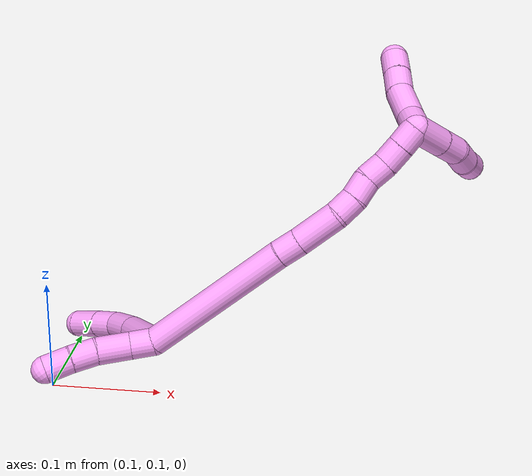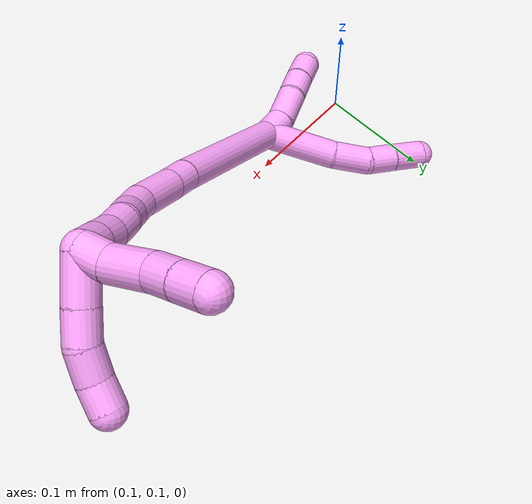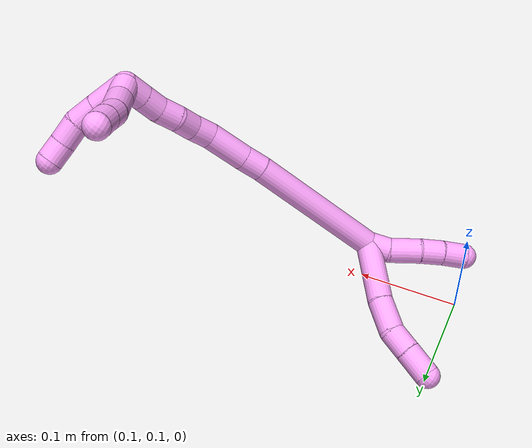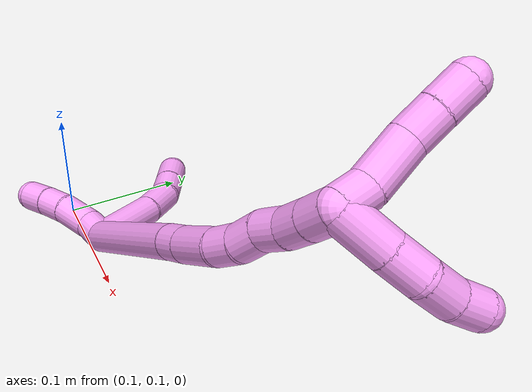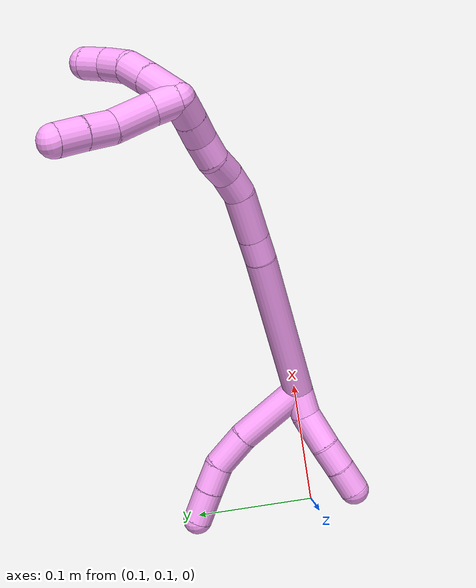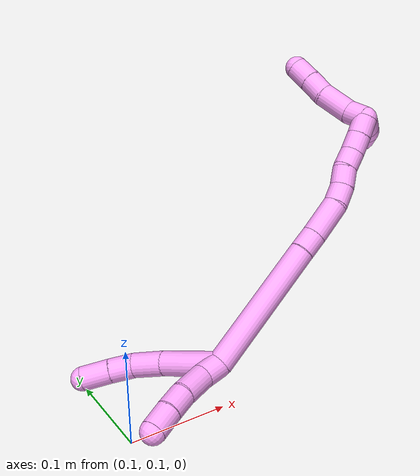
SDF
<sdf version="1.7">
 <world name="default">
  <model name="4">
   <static>0</static>
   <link name="4">
    <collision name="collision-cylinder-e_1_2_8">
     <pose>0.004256 0.027496 -0.013972 -2.04096 0.137119 -0.222911</pose>
     <geometry><cylinder><radius>0.0125</radius><length>0.062269</length></cylinder></geometry>
     <surface>
      <friction><ode><mu>1.16</mu><mu2>1.16</mu2><slip1>0</slip1><slip2>0</slip2></ode></friction>
      <contact><ode><kp>1e+06</kp><kd>1</kd><max_vel>0</max_vel><min_depth>0.001</min_depth></ode></contact>
     </surface>
    </collision>
    <visual name="visual-cylinder-e_1_2_8">
     <pose>0.004256 0.027496 -0.013972 -2.04096 0.137119 -0.222911</pose>
     <geometry><cylinder><radius>0.0125</radius><length>0.062269</length></cylinder></geometry>
     <material><ambient>1 0.65098 0.996078 1</ambient></material>
    </visual>
    <collision name="collision-cylinder-e_2_8_9">
     <pose>0.009249 0.069004 -0.037232 -2.15609 0.043829 -0.081598</pose>
     <geometry><cylinder><radius>0.0125</radius><length>0.033655</length></cylinder></geometry>
     <surface>
      <friction><ode><mu>1.16</mu><mu2>1.16</mu2><slip1>0</slip1><slip2>0</slip2></ode></friction>
      <contact><ode><kp>1e+06</kp><kd>1</kd><max_vel>0</max_vel><min_depth>0.001</min_depth></ode></contact>
     </surface>
    </collision>
    <visual name="visual-cylinder-e_2_8_9">
     <pose>0.009249 0.069004 -0.037232 -2.15609 0.043829 -0.081598</pose>
     <geometry><cylinder><radius>0.0125</radius><length>0.033655</length></cylinder></geometry>
     <material><ambient>1 0.65098 0.996078 1</ambient></material>
    </visual>
    <collision name="collision-cylinder-e_3_9_10">
     <pose>0.008056 0.091112 -0.055572 -2.41197 -0.15758 0.40773</pose>
     <geometry><cylinder><radius>0.0125</radius><length>0.024593</length></cylinder></geometry>
     <surface>
      <friction><ode><mu>1.16</mu><mu2>1.16</mu2><slip1>0</slip1><slip2>0</slip2></ode></friction>
      <contact><ode><kp>1e+06</kp><kd>1</kd><max_vel>0</max_vel><min_depth>0.001</min_depth></ode></contact>
     </surface>
    </collision>
    <visual name="visual-cylinder-e_3_9_10">
     <pose>0.008056 0.091112 -0.055572 -2.41197 -0.15758 0.40773</pose>
     <geometry><cylinder><radius>0.0125</radius><length>0.024593</length></cylinder></geometry>
     <material><ambient>1 0.65098 0.996078 1</ambient></material>
    </visual>
    <collision name="collision-cylinder-e_4_10_6">
     <pose>0.004172 0.108582 -0.075832 -2.44502 -0.132977 0.36275</pose>
     <geometry><cylinder><radius>0.0125</radius><length>0.029484</length></cylinder></geometry>
     <surface>
      <friction><ode><mu>1.16</mu><mu2>1.16</mu2><slip1>0</slip1><slip2>0</slip2></ode></friction>
      <contact><ode><kp>1e+06</kp><kd>1</kd><max_vel>0</max_vel><min_depth>0.001</min_depth></ode></contact>
     </surface>
    </collision>
    <visual name="visual-cylinder-e_4_10_6">
     <pose>0.004172 0.108582 -0.075832 -2.44502 -0.132977 0.36275</pose>
     <geometry><cylinder><radius>0.0125</radius><length>0.029484</length></cylinder></geometry>
     <material><ambient>1 0.65098 0.996078 1</ambient></material>
    </visual>
    <collision name="collision-cylinder-e_1_2_11">
     <pose>-0.004857 0.001018 -0.009723 -3.0373 -0.461107 2.704</pose>
     <geometry><cylinder><radius>0.0125</radius><length>0.021831</length></cylinder></geometry>
     <surface>
      <friction><ode><mu>1.16</mu><mu2>1.16</mu2><slip1>0</slip1><slip2>0</slip2></ode></friction>
      <contact><ode><kp>1e+06</kp><kd>1</kd><max_vel>0</max_vel><min_depth>0.001</min_depth></ode></contact>
     </surface>
    </collision>
    <visual name="visual-cylinder-e_1_2_11">
     <pose>-0.004857 0.001018 -0.009723 -3.0373 -0.461107 2.704</pose>
     <geometry><cylinder><radius>0.0125</radius><length>0.021831</length></cylinder></geometry>
     <material><ambient>1 0.65098 0.996078 1</ambient></material>
    </visual>
    <collision name="collision-cylinder-e_2_11_12">
     <pose>-0.018785 -0.00012 -0.031915 2.97044 -0.621917 -2.61989</pose>
     <geometry><cylinder><radius>0.0125</radius><length>0.031141</length></cylinder></geometry>
     <surface>
      <friction><ode><mu>1.16</mu><mu2>1.16</mu2><slip1>0</slip1><slip2>0</slip2></ode></friction>
      <contact><ode><kp>1e+06</kp><kd>1</kd><max_vel>0</max_vel><min_depth>0.001</min_depth></ode></contact>
     </surface>
    </collision>
    <visual name="visual-cylinder-e_2_11_12">
     <pose>-0.018785 -0.00012 -0.031915 2.97044 -0.621917 -2.61989</pose>
     <geometry><cylinder><radius>0.0125</radius><length>0.031141</length></cylinder></geometry>
     <material><ambient>1 0.65098 0.996078 1</ambient></material>
    </visual>
    <collision name="collision-cylinder-e_3_12_13">
     <pose>-0.033167 -0.004502 -0.054208 2.9187 -0.485225 -2.29224</pose>
     <geometry><cylinder><radius>0.0125</radius><length>0.022771</length></cylinder></geometry>
     <surface>
      <friction><ode><mu>1.16</mu><mu2>1.16</mu2><slip1>0</slip1><slip2>0</slip2></ode></friction>
      <contact><ode><kp>1e+06</kp><kd>1</kd><max_vel>0</max_vel><min_depth>0.001</min_depth></ode></contact>
     </surface>
    </collision>
    <visual name="visual-cylinder-e_3_12_13">
     <pose>-0.033167 -0.004502 -0.054208 2.9187 -0.485225 -2.29224</pose>
     <geometry><cylinder><radius>0.0125</radius><length>0.022771</length></cylinder></geometry>
     <material><ambient>1 0.65098 0.996078 1</ambient></material>
    </visual>
    <collision name="collision-cylinder-e_4_13_5">
     <pose>-0.043171 -0.009024 -0.074975 2.93487 -0.397444 -2.19028</pose>
     <geometry><cylinder><radius>0.0125</radius><length>0.024256</length></cylinder></geometry>
     <surface>
      <friction><ode><mu>1.16</mu><mu2>1.16</mu2><slip1>0</slip1><slip2>0</slip2></ode></friction>
      <contact><ode><kp>1e+06</kp><kd>1</kd><max_vel>0</max_vel><min_depth>0.001</min_depth></ode></contact>
     </surface>
    </collision>
    <visual name="visual-cylinder-e_4_13_5">
     <pose>-0.043171 -0.009024 -0.074975 2.93487 -0.397444 -2.19028</pose>
     <geometry><cylinder><radius>0.0125</radius><length>0.024256</length></cylinder></geometry>
     <material><ambient>1 0.65098 0.996078 1</ambient></material>
    </visual>
    <collision name="collision-cylinder-e_1_2_14">
     <pose>0.000476 -0.000226 0.068831 0.003285 0.006918 1.1e-05</pose>
     <geometry><cylinder><radius>0.0125</radius><length>0.137667</length></cylinder></geometry>
     <surface>
      <friction><ode><mu>1.16</mu><mu2>1.16</mu2><slip1>0</slip1><slip2>0</slip2></ode></friction>
      <contact><ode><kp>1e+06</kp><kd>1</kd><max_vel>0</max_vel><min_depth>0.001</min_depth></ode></contact>
     </surface>
    </collision>
    <visual name="visual-cylinder-e_1_2_14">
     <pose>0.000476 -0.000226 0.068831 0.003285 0.006918 1.1e-05</pose>
     <geometry><cylinder><radius>0.0125</radius><length>0.137667</length></cylinder></geometry>
     <material><ambient>1 0.65098 0.996078 1</ambient></material>
    </visual>
    <collision name="collision-cylinder-e_2_14_15">
     <pose>0.00176 -0.000285 0.148173 -0.015912 0.076677 -0.00061</pose>
     <geometry><cylinder><radius>0.0125</radius><length>0.021084</length></cylinder></geometry>
     <surface>
      <friction><ode><mu>1.16</mu><mu2>1.16</mu2><slip1>0</slip1><slip2>0</slip2></ode></friction>
      <contact><ode><kp>1e+06</kp><kd>1</kd><max_vel>0</max_vel><min_depth>0.001</min_depth></ode></contact>
     </surface>
    </collision>
    <visual name="visual-cylinder-e_2_14_15">
     <pose>0.00176 -0.000285 0.148173 -0.015912 0.076677 -0.00061</pose>
     <geometry><cylinder><radius>0.0125</radius><length>0.021084</length></cylinder></geometry>
     <material><ambient>1 0.65098 0.996078 1</ambient></material>
    </visual>
    <collision name="collision-cylinder-e_3_15_16">
     <pose>0.002984 0.000412 0.178538 -0.026674 0.020984 -0.00028</pose>
     <geometry><cylinder><radius>0.0125</radius><length>0.039734</length></cylinder></geometry>
     <surface>
      <friction><ode><mu>1.16</mu><mu2>1.16</mu2><slip1>0</slip1><slip2>0</slip2></ode></friction>
      <contact><ode><kp>1e+06</kp><kd>1</kd><max_vel>0</max_vel><min_depth>0.001</min_depth></ode></contact>
     </surface>
    </collision>
    <visual name="visual-cylinder-e_3_15_16">
     <pose>0.002984 0.000412 0.178538 -0.026674 0.020984 -0.00028</pose>
     <geometry><cylinder><radius>0.0125</radius><length>0.039734</length></cylinder></geometry>
     <material><ambient>1 0.65098 0.996078 1</ambient></material>
    </visual>
    <collision name="collision-cylinder-e_4_16_17">
     <pose>0.003349 0.003571 0.208257 -0.260466 -0.005105 0.000669</pose>
     <geometry><cylinder><radius>0.0125</radius><length>0.020416</length></cylinder></geometry>
     <surface>
      <friction><ode><mu>1.16</mu><mu2>1.16</mu2><slip1>0</slip1><slip2>0</slip2></ode></friction>
      <contact><ode><kp>1e+06</kp><kd>1</kd><max_vel>0</max_vel><min_depth>0.001</min_depth></ode></contact>
     </surface>
    </collision>
    <visual name="visual-cylinder-e_4_16_17">
     <pose>0.003349 0.003571 0.208257 -0.260466 -0.005105 0.000669</pose>
     <geometry><cylinder><radius>0.0125</radius><length>0.020416</length></cylinder></geometry>
     <material><ambient>1 0.65098 0.996078 1</ambient></material>
    </visual>
    <collision name="collision-cylinder-e_5_17_18">
     <pose>0.001366 0.010147 0.227384 -0.402869 -0.189453 0.038798</pose>
     <geometry><cylinder><radius>0.0125</radius><length>0.020506</length></cylinder></geometry>
     <surface>
      <friction><ode><mu>1.16</mu><mu2>1.16</mu2><slip1>0</slip1><slip2>0</slip2></ode></friction>
      <contact><ode><kp>1e+06</kp><kd>1</kd><max_vel>0</max_vel><min_depth>0.001</min_depth></ode></contact>
     </surface>
    </collision>
    <visual name="visual-cylinder-e_5_17_18">
     <pose>0.001366 0.010147 0.227384 -0.402869 -0.189453 0.038798</pose>
     <geometry><cylinder><radius>0.0125</radius><length>0.020506</length></cylinder></geometry>
     <material><ambient>1 0.65098 0.996078 1</ambient></material>
    </visual>
    <collision name="collision-cylinder-e_6_18_19">
     <pose>-0.00022 0.016256 0.246485 -0.216184 0.034217 -0.003713</pose>
     <geometry><cylinder><radius>0.0125</radius><length>0.020156</length></cylinder></geometry>
     <surface>
      <friction><ode><mu>1.16</mu><mu2>1.16</mu2><slip1>0</slip1><slip2>0</slip2></ode></friction>
      <contact><ode><kp>1e+06</kp><kd>1</kd><max_vel>0</max_vel><min_depth>0.001</min_depth></ode></contact>
     </surface>
    </collision>
    <visual name="visual-cylinder-e_6_18_19">
     <pose>-0.00022 0.016256 0.246485 -0.216184 0.034217 -0.003713</pose>
     <geometry><cylinder><radius>0.0125</radius><length>0.020156</length></cylinder></geometry>
     <material><ambient>1 0.65098 0.996078 1</ambient></material>
    </visual>
    <collision name="collision-cylinder-e_7_19_20">
     <pose>-0.001425 0.020277 0.266127 -0.187552 -0.154019 0.014514</pose>
     <geometry><cylinder><radius>0.0125</radius><length>0.020197</length></cylinder></geometry>
     <surface>
      <friction><ode><mu>1.16</mu><mu2>1.16</mu2><slip1>0</slip1><slip2>0</slip2></ode></friction>
      <contact><ode><kp>1e+06</kp><kd>1</kd><max_vel>0</max_vel><min_depth>0.001</min_depth></ode></contact>
     </surface>
    </collision>
    <visual name="visual-cylinder-e_7_19_20">
     <pose>-0.001425 0.020277 0.266127 -0.187552 -0.154019 0.014514</pose>
     <geometry><cylinder><radius>0.0125</radius><length>0.020197</length></cylinder></geometry>
     <material><ambient>1 0.65098 0.996078 1</ambient></material>
    </visual>
    <collision name="collision-cylinder-e_8_20_1">
     <pose>-0.004775 0.024274 0.285657 -0.216209 -0.17899 0.019477</pose>
     <geometry><cylinder><radius>0.0125</radius><length>0.02024</length></cylinder></geometry>
     <surface>
      <friction><ode><mu>1.16</mu><mu2>1.16</mu2><slip1>0</slip1><slip2>0</slip2></ode></friction>
      <contact><ode><kp>1e+06</kp><kd>1</kd><max_vel>0</max_vel><min_depth>0.001</min_depth></ode></contact>
     </surface>
    </collision>
    <visual name="visual-cylinder-e_8_20_1">
     <pose>-0.004775 0.024274 0.285657 -0.216209 -0.17899 0.019477</pose>
     <geometry><cylinder><radius>0.0125</radius><length>0.02024</length></cylinder></geometry>
     <material><ambient>1 0.65098 0.996078 1</ambient></material>
    </visual>
    <collision name="collision-cylinder-e_1_1_21">
     <pose>0.008988 0.031473 0.299514 -0.88644 1.17337 -0.611374</pose>
     <geometry><cylinder><radius>0.0125</radius><length>0.033761</length></cylinder></geometry>
     <surface>
      <friction><ode><mu>1.16</mu><mu2>1.16</mu2><slip1>0</slip1><slip2>0</slip2></ode></friction>
      <contact><ode><kp>1e+06</kp><kd>1</kd><max_vel>0</max_vel><min_depth>0.001</min_depth></ode></contact>
     </surface>
    </collision>
    <visual name="visual-cylinder-e_1_1_21">
     <pose>0.008988 0.031473 0.299514 -0.88644 1.17337 -0.611374</pose>
     <geometry><cylinder><radius>0.0125</radius><length>0.033761</length></cylinder></geometry>
     <material><ambient>1 0.65098 0.996078 1</ambient></material>
    </visual>
    <collision name="collision-cylinder-e_2_21_22">
     <pose>0.035135 0.040428 0.3064 -0.954783 1.14738 -0.64519</pose>
     <geometry><cylinder><radius>0.0125</radius><length>0.023215</length></cylinder></geometry>
     <surface>
      <friction><ode><mu>1.16</mu><mu2>1.16</mu2><slip1>0</slip1><slip2>0</slip2></ode></friction>
      <contact><ode><kp>1e+06</kp><kd>1</kd><max_vel>0</max_vel><min_depth>0.001</min_depth></ode></contact>
     </surface>
    </collision>
    <visual name="visual-cylinder-e_2_21_22">
     <pose>0.035135 0.040428 0.3064 -0.954783 1.14738 -0.64519</pose>
     <geometry><cylinder><radius>0.0125</radius><length>0.023215</length></cylinder></geometry>
     <material><ambient>1 0.65098 0.996078 1</ambient></material>
    </visual>
    <collision name="collision-cylinder-e_3_22_23">
     <pose>0.055787 0.049653 0.308866 -1.62503 1.08316 -1.13169</pose>
     <geometry><cylinder><radius>0.0125</radius><length>0.022795</length></cylinder></geometry>
     <surface>
      <friction><ode><mu>1.16</mu><mu2>1.16</mu2><slip1>0</slip1><slip2>0</slip2></ode></friction>
      <contact><ode><kp>1e+06</kp><kd>1</kd><max_vel>0</max_vel><min_depth>0.001</min_depth></ode></contact>
     </surface>
    </collision>
    <visual name="visual-cylinder-e_3_22_23">
     <pose>0.055787 0.049653 0.308866 -1.62503 1.08316 -1.13169</pose>
     <geometry><cylinder><radius>0.0125</radius><length>0.022795</length></cylinder></geometry>
     <material><ambient>1 0.65098 0.996078 1</ambient></material>
    </visual>
    <collision name="collision-cylinder-e_4_23_4">
     <pose>0.073652 0.061417 0.308967 -1.51015 0.880082 -0.834215</pose>
     <geometry><cylinder><radius>0.0125</radius><length>0.020228</length></cylinder></geometry>
     <surface>
      <friction><ode><mu>1.16</mu><mu2>1.16</mu2><slip1>0</slip1><slip2>0</slip2></ode></friction>
      <contact><ode><kp>1e+06</kp><kd>1</kd><max_vel>0</max_vel><min_depth>0.001</min_depth></ode></contact>
     </surface>
    </collision>
    <visual name="visual-cylinder-e_4_23_4">
     <pose>0.073652 0.061417 0.308967 -1.51015 0.880082 -0.834215</pose>
     <geometry><cylinder><radius>0.0125</radius><length>0.020228</length></cylinder></geometry>
     <material><ambient>1 0.65098 0.996078 1</ambient></material>
    </visual>
    <collision name="collision-cylinder-e_1_1_24">
     <pose>-0.006145 0.036802 0.295492 -1.56035 0.041583 -0.041151</pose>
     <geometry><cylinder><radius>0.0125</radius><length>0.020802</length></cylinder></geometry>
     <surface>
      <friction><ode><mu>1.16</mu><mu2>1.16</mu2><slip1>0</slip1><slip2>0</slip2></ode></friction>
      <contact><ode><kp>1e+06</kp><kd>1</kd><max_vel>0</max_vel><min_depth>0.001</min_depth></ode></contact>
     </surface>
    </collision>
    <visual name="visual-cylinder-e_1_1_24">
     <pose>-0.006145 0.036802 0.295492 -1.56035 0.041583 -0.041151</pose>
     <geometry><cylinder><radius>0.0125</radius><length>0.020802</length></cylinder></geometry>
     <material><ambient>1 0.65098 0.996078 1</ambient></material>
    </visual>
    <collision name="collision-cylinder-e_2_24_25">
     <pose>-0.010256 0.063654 0.297232 -1.47202 -0.268062 0.243069</pose>
     <geometry><cylinder><radius>0.0125</radius><length>0.034307</length></cylinder></geometry>
     <surface>
      <friction><ode><mu>1.16</mu><mu2>1.16</mu2><slip1>0</slip1><slip2>0</slip2></ode></friction>
      <contact><ode><kp>1e+06</kp><kd>1</kd><max_vel>0</max_vel><min_depth>0.001</min_depth></ode></contact>
     </surface>
    </collision>
    <visual name="visual-cylinder-e_2_24_25">
     <pose>-0.010256 0.063654 0.297232 -1.47202 -0.268062 0.243069</pose>
     <geometry><cylinder><radius>0.0125</radius><length>0.034307</length></cylinder></geometry>
     <material><ambient>1 0.65098 0.996078 1</ambient></material>
    </visual>
    <collision name="collision-cylinder-e_3_25_26">
     <pose>-0.017569 0.090404 0.302142 -1.26232 -0.251055 0.183944</pose>
     <geometry><cylinder><radius>0.0125</radius><length>0.022299</length></cylinder></geometry>
     <surface>
      <friction><ode><mu>1.16</mu><mu2>1.16</mu2><slip1>0</slip1><slip2>0</slip2></ode></friction>
      <contact><ode><kp>1e+06</kp><kd>1</kd><max_vel>0</max_vel><min_depth>0.001</min_depth></ode></contact>
     </surface>
    </collision>
    <visual name="visual-cylinder-e_3_25_26">
     <pose>-0.017569 0.090404 0.302142 -1.26232 -0.251055 0.183944</pose>
     <geometry><cylinder><radius>0.0125</radius><length>0.022299</length></cylinder></geometry>
     <material><ambient>1 0.65098 0.996078 1</ambient></material>
    </visual>
    <collision name="collision-cylinder-e_4_26_3">
     <pose>-0.022935 0.111286 0.308367 -1.29955 -0.23189 0.176535</pose>
     <geometry><cylinder><radius>0.0125</radius><length>0.022591</length></cylinder></geometry>
     <surface>
      <friction><ode><mu>1.16</mu><mu2>1.16</mu2><slip1>0</slip1><slip2>0</slip2></ode></friction>
      <contact><ode><kp>1e+06</kp><kd>1</kd><max_vel>0</max_vel><min_depth>0.001</min_depth></ode></contact>
     </surface>
    </collision>
    <visual name="visual-cylinder-e_4_26_3">
     <pose>-0.022935 0.111286 0.308367 -1.29955 -0.23189 0.176535</pose>
     <geometry><cylinder><radius>0.0125</radius><length>0.022591</length></cylinder></geometry>
     <material><ambient>1 0.65098 0.996078 1</ambient></material>
    </visual>
    <collision name="collision-sphere-3">
     <pose>-0.025531 0.121877 0.311312 0 -0 0</pose>
     <geometry><sphere><radius>0.0125</radius></sphere></geometry>
     <surface>
      <friction><ode><mu>1.16</mu><mu2>1.16</mu2><slip1>0</slip1><slip2>0</slip2></ode></friction>
      <contact><ode><kp>1e+06</kp><kd>1</kd><max_vel>0</max_vel><min_depth>0.001</min_depth></ode></contact>
     </surface>
    </collision>
    <visual name="visual-sphere-3">
     <pose>-0.025531 0.121877 0.311312 0 -0 0</pose>
     <geometry><sphere><radius>0.0125</radius></sphere></geometry>
     <material><ambient>1 0.65098 0.996078 1</ambient></material>
    </visual>
    <collision name="collision-sphere-26">
     <pose>-0.020339 0.100695 0.305421 0 -0 0</pose>
     <geometry><sphere><radius>0.0125</radius></sphere></geometry>
     <surface>
      <friction><ode><mu>1.16</mu><mu2>1.16</mu2><slip1>0</slip1><slip2>0</slip2></ode></friction>
      <contact><ode><kp>1e+06</kp><kd>1</kd><max_vel>0</max_vel><min_depth>0.001</min_depth></ode></contact>
     </surface>
    </collision>
    <visual name="visual-sphere-26">
     <pose>-0.020339 0.100695 0.305421 0 -0 0</pose>
     <geometry><sphere><radius>0.0125</radius></sphere></geometry>
     <material><ambient>1 0.65098 0.996078 1</ambient></material>
    </visual>
    <collision name="collision-sphere-25">
     <pose>-0.014799 0.080114 0.298863 0 -0 0</pose>
     <geometry><sphere><radius>0.0125</radius></sphere></geometry>
     <surface>
      <friction><ode><mu>1.16</mu><mu2>1.16</mu2><slip1>0</slip1><slip2>0</slip2></ode></friction>
      <contact><ode><kp>1e+06</kp><kd>1</kd><max_vel>0</max_vel><min_depth>0.001</min_depth></ode></contact>
     </surface>
    </collision>
    <visual name="visual-sphere-25">
     <pose>-0.014799 0.080114 0.298863 0 -0 0</pose>
     <geometry><sphere><radius>0.0125</radius></sphere></geometry>
     <material><ambient>1 0.65098 0.996078 1</ambient></material>
    </visual>
    <collision name="collision-sphere-24">
     <pose>-0.005712 0.047193 0.295601 0 -0 0</pose>
     <geometry><sphere><radius>0.0125</radius></sphere></geometry>
     <surface>
      <friction><ode><mu>1.16</mu><mu2>1.16</mu2><slip1>0</slip1><slip2>0</slip2></ode></friction>
      <contact><ode><kp>1e+06</kp><kd>1</kd><max_vel>0</max_vel><min_depth>0.001</min_depth></ode></contact>
     </surface>
    </collision>
    <visual name="visual-sphere-24">
     <pose>-0.005712 0.047193 0.295601 0 -0 0</pose>
     <geometry><sphere><radius>0.0125</radius></sphere></geometry>
     <material><ambient>1 0.65098 0.996078 1</ambient></material>
    </visual>
    <collision name="collision-sphere-4">
     <pose>0.081448 0.067849 0.309358 0 -0 0</pose>
     <geometry><sphere><radius>0.0125</radius></sphere></geometry>
     <surface>
      <friction><ode><mu>1.16</mu><mu2>1.16</mu2><slip1>0</slip1><slip2>0</slip2></ode></friction>
      <contact><ode><kp>1e+06</kp><kd>1</kd><max_vel>0</max_vel><min_depth>0.001</min_depth></ode></contact>
     </surface>
    </collision>
    <visual name="visual-sphere-4">
     <pose>0.081448 0.067849 0.309358 0 -0 0</pose>
     <geometry><sphere><radius>0.0125</radius></sphere></geometry>
     <material><ambient>1 0.65098 0.996078 1</ambient></material>
    </visual>
    <collision name="collision-sphere-23">
     <pose>0.065856 0.054985 0.308576 0 -0 0</pose>
     <geometry><sphere><radius>0.0125</radius></sphere></geometry>
     <surface>
      <friction><ode><mu>1.16</mu><mu2>1.16</mu2><slip1>0</slip1><slip2>0</slip2></ode></friction>
      <contact><ode><kp>1e+06</kp><kd>1</kd><max_vel>0</max_vel><min_depth>0.001</min_depth></ode></contact>
     </surface>
    </collision>
    <visual name="visual-sphere-23">
     <pose>0.065856 0.054985 0.308576 0 -0 0</pose>
     <geometry><sphere><radius>0.0125</radius></sphere></geometry>
     <material><ambient>1 0.65098 0.996078 1</ambient></material>
    </visual>
    <collision name="collision-sphere-22">
     <pose>0.045718 0.04432 0.309155 0 -0 0</pose>
     <geometry><sphere><radius>0.0125</radius></sphere></geometry>
     <surface>
      <friction><ode><mu>1.16</mu><mu2>1.16</mu2><slip1>0</slip1><slip2>0</slip2></ode></friction>
      <contact><ode><kp>1e+06</kp><kd>1</kd><max_vel>0</max_vel><min_depth>0.001</min_depth></ode></contact>
     </surface>
    </collision>
    <visual name="visual-sphere-22">
     <pose>0.045718 0.04432 0.309155 0 -0 0</pose>
     <geometry><sphere><radius>0.0125</radius></sphere></geometry>
     <material><ambient>1 0.65098 0.996078 1</ambient></material>
    </visual>
    <collision name="collision-sphere-21">
     <pose>0.024552 0.036535 0.303644 0 -0 0</pose>
     <geometry><sphere><radius>0.0125</radius></sphere></geometry>
     <surface>
      <friction><ode><mu>1.16</mu><mu2>1.16</mu2><slip1>0</slip1><slip2>0</slip2></ode></friction>
      <contact><ode><kp>1e+06</kp><kd>1</kd><max_vel>0</max_vel><min_depth>0.001</min_depth></ode></contact>
     </surface>
    </collision>
    <visual name="visual-sphere-21">
     <pose>0.024552 0.036535 0.303644 0 -0 0</pose>
     <geometry><sphere><radius>0.0125</radius></sphere></geometry>
     <material><ambient>1 0.65098 0.996078 1</ambient></material>
    </visual>
    <collision name="collision-sphere-1">
     <pose>-0.006577 0.02641 0.295383 0 -0 0</pose>
     <geometry><sphere><radius>0.0125</radius></sphere></geometry>
     <surface>
      <friction><ode><mu>1.16</mu><mu2>1.16</mu2><slip1>0</slip1><slip2>0</slip2></ode></friction>
      <contact><ode><kp>1e+06</kp><kd>1</kd><max_vel>0</max_vel><min_depth>0.001</min_depth></ode></contact>
     </surface>
    </collision>
    <visual name="visual-sphere-1">
     <pose>-0.006577 0.02641 0.295383 0 -0 0</pose>
     <geometry><sphere><radius>0.0125</radius></sphere></geometry>
     <material><ambient>1 0.65098 0.996078 1</ambient></material>
    </visual>
    <collision name="collision-sphere-11">
     <pose>-0.009714 0.002035 -0.019445 0 -0 0</pose>
     <geometry><sphere><radius>0.0125</radius></sphere></geometry>
     <surface>
      <friction><ode><mu>1.16</mu><mu2>1.16</mu2><slip1>0</slip1><slip2>0</slip2></ode></friction>
      <contact><ode><kp>1e+06</kp><kd>1</kd><max_vel>0</max_vel><min_depth>0.001</min_depth></ode></contact>
     </surface>
    </collision>
    <visual name="visual-sphere-11">
     <pose>-0.009714 0.002035 -0.019445 0 -0 0</pose>
     <geometry><sphere><radius>0.0125</radius></sphere></geometry>
     <material><ambient>1 0.65098 0.996078 1</ambient></material>
    </visual>
    <collision name="collision-sphere-6">
     <pose>0.002218 0.117957 -0.08704 0 -0 0</pose>
     <geometry><sphere><radius>0.0125</radius></sphere></geometry>
     <surface>
      <friction><ode><mu>1.16</mu><mu2>1.16</mu2><slip1>0</slip1><slip2>0</slip2></ode></friction>
      <contact><ode><kp>1e+06</kp><kd>1</kd><max_vel>0</max_vel><min_depth>0.001</min_depth></ode></contact>
     </surface>
    </collision>
    <visual name="visual-sphere-6">
     <pose>0.002218 0.117957 -0.08704 0 -0 0</pose>
     <geometry><sphere><radius>0.0125</radius></sphere></geometry>
     <material><ambient>1 0.65098 0.996078 1</ambient></material>
    </visual>
    <collision name="collision-sphere-10">
     <pose>0.006127 0.099207 -0.064624 0 -0 0</pose>
     <geometry><sphere><radius>0.0125</radius></sphere></geometry>
     <surface>
      <friction><ode><mu>1.16</mu><mu2>1.16</mu2><slip1>0</slip1><slip2>0</slip2></ode></friction>
      <contact><ode><kp>1e+06</kp><kd>1</kd><max_vel>0</max_vel><min_depth>0.001</min_depth></ode></contact>
     </surface>
    </collision>
    <visual name="visual-sphere-10">
     <pose>0.006127 0.099207 -0.064624 0 -0 0</pose>
     <geometry><sphere><radius>0.0125</radius></sphere></geometry>
     <material><ambient>1 0.65098 0.996078 1</ambient></material>
    </visual>
    <collision name="collision-sphere-9">
     <pose>0.009986 0.083017 -0.046519 0 -0 0</pose>
     <geometry><sphere><radius>0.0125</radius></sphere></geometry>
     <surface>
      <friction><ode><mu>1.16</mu><mu2>1.16</mu2><slip1>0</slip1><slip2>0</slip2></ode></friction>
      <contact><ode><kp>1e+06</kp><kd>1</kd><max_vel>0</max_vel><min_depth>0.001</min_depth></ode></contact>
     </surface>
    </collision>
    <visual name="visual-sphere-9">
     <pose>0.009986 0.083017 -0.046519 0 -0 0</pose>
     <geometry><sphere><radius>0.0125</radius></sphere></geometry>
     <material><ambient>1 0.65098 0.996078 1</ambient></material>
    </visual>
    <collision name="collision-sphere-2">
     <geometry><sphere><radius>0.0125</radius></sphere></geometry>
     <surface>
      <friction><ode><mu>1.16</mu><mu2>1.16</mu2><slip1>0</slip1><slip2>0</slip2></ode></friction>
      <contact><ode><kp>1e+06</kp><kd>1</kd><max_vel>0</max_vel><min_depth>0.001</min_depth></ode></contact>
     </surface>
    </collision>
    <visual name="visual-sphere-2">
     <geometry><sphere><radius>0.0125</radius></sphere></geometry>
     <material><ambient>1 0.65098 0.996078 1</ambient></material>
    </visual>
    <collision name="collision-sphere-19">
     <pose>0.000125 0.018416 0.256323 0 -0 0</pose>
     <geometry><sphere><radius>0.0125</radius></sphere></geometry>
     <surface>
      <friction><ode><mu>1.16</mu><mu2>1.16</mu2><slip1>0</slip1><slip2>0</slip2></ode></friction>
      <contact><ode><kp>1e+06</kp><kd>1</kd><max_vel>0</max_vel><min_depth>0.001</min_depth></ode></contact>
     </surface>
    </collision>
    <visual name="visual-sphere-19">
     <pose>0.000125 0.018416 0.256323 0 -0 0</pose>
     <geometry><sphere><radius>0.0125</radius></sphere></geometry>
     <material><ambient>1 0.65098 0.996078 1</ambient></material>
    </visual>
    <collision name="collision-sphere-8">
     <pose>0.008511 0.054991 -0.027945 0 -0 0</pose>
     <geometry><sphere><radius>0.0125</radius></sphere></geometry>
     <surface>
      <friction><ode><mu>1.16</mu><mu2>1.16</mu2><slip1>0</slip1><slip2>0</slip2></ode></friction>
      <contact><ode><kp>1e+06</kp><kd>1</kd><max_vel>0</max_vel><min_depth>0.001</min_depth></ode></contact>
     </surface>
    </collision>
    <visual name="visual-sphere-8">
     <pose>0.008511 0.054991 -0.027945 0 -0 0</pose>
     <geometry><sphere><radius>0.0125</radius></sphere></geometry>
     <material><ambient>1 0.65098 0.996078 1</ambient></material>
    </visual>
    <collision name="collision-sphere-12">
     <pose>-0.027856 -0.002276 -0.044386 0 -0 0</pose>
     <geometry><sphere><radius>0.0125</radius></sphere></geometry>
     <surface>
      <friction><ode><mu>1.16</mu><mu2>1.16</mu2><slip1>0</slip1><slip2>0</slip2></ode></friction>
      <contact><ode><kp>1e+06</kp><kd>1</kd><max_vel>0</max_vel><min_depth>0.001</min_depth></ode></contact>
     </surface>
    </collision>
    <visual name="visual-sphere-12">
     <pose>-0.027856 -0.002276 -0.044386 0 -0 0</pose>
     <geometry><sphere><radius>0.0125</radius></sphere></geometry>
     <material><ambient>1 0.65098 0.996078 1</ambient></material>
    </visual>
    <collision name="collision-sphere-13">
     <pose>-0.038477 -0.006728 -0.06403 0 -0 0</pose>
     <geometry><sphere><radius>0.0125</radius></sphere></geometry>
     <surface>
      <friction><ode><mu>1.16</mu><mu2>1.16</mu2><slip1>0</slip1><slip2>0</slip2></ode></friction>
      <contact><ode><kp>1e+06</kp><kd>1</kd><max_vel>0</max_vel><min_depth>0.001</min_depth></ode></contact>
     </surface>
    </collision>
    <visual name="visual-sphere-13">
     <pose>-0.038477 -0.006728 -0.06403 0 -0 0</pose>
     <geometry><sphere><radius>0.0125</radius></sphere></geometry>
     <material><ambient>1 0.65098 0.996078 1</ambient></material>
    </visual>
    <collision name="collision-sphere-5">
     <pose>-0.047866 -0.011319 -0.085919 0 -0 0</pose>
     <geometry><sphere><radius>0.0125</radius></sphere></geometry>
     <surface>
      <friction><ode><mu>1.16</mu><mu2>1.16</mu2><slip1>0</slip1><slip2>0</slip2></ode></friction>
      <contact><ode><kp>1e+06</kp><kd>1</kd><max_vel>0</max_vel><min_depth>0.001</min_depth></ode></contact>
     </surface>
    </collision>
    <visual name="visual-sphere-5">
     <pose>-0.047866 -0.011319 -0.085919 0 -0 0</pose>
     <geometry><sphere><radius>0.0125</radius></sphere></geometry>
     <material><ambient>1 0.65098 0.996078 1</ambient></material>
    </visual>
    <collision name="collision-sphere-14">
     <pose>0.000952 -0.000452 0.137663 0 -0 0</pose>
     <geometry><sphere><radius>0.0125</radius></sphere></geometry>
     <surface>
      <friction><ode><mu>1.16</mu><mu2>1.16</mu2><slip1>0</slip1><slip2>0</slip2></ode></friction>
      <contact><ode><kp>1e+06</kp><kd>1</kd><max_vel>0</max_vel><min_depth>0.001</min_depth></ode></contact>
     </surface>
    </collision>
    <visual name="visual-sphere-14">
     <pose>0.000952 -0.000452 0.137663 0 -0 0</pose>
     <geometry><sphere><radius>0.0125</radius></sphere></geometry>
     <material><ambient>1 0.65098 0.996078 1</ambient></material>
    </visual>
    <collision name="collision-sphere-15">
     <pose>0.002567 -0.000118 0.158683 0 -0 0</pose>
     <geometry><sphere><radius>0.0125</radius></sphere></geometry>
     <surface>
      <friction><ode><mu>1.16</mu><mu2>1.16</mu2><slip1>0</slip1><slip2>0</slip2></ode></friction>
      <contact><ode><kp>1e+06</kp><kd>1</kd><max_vel>0</max_vel><min_depth>0.001</min_depth></ode></contact>
     </surface>
    </collision>
    <visual name="visual-sphere-15">
     <pose>0.002567 -0.000118 0.158683 0 -0 0</pose>
     <geometry><sphere><radius>0.0125</radius></sphere></geometry>
     <material><ambient>1 0.65098 0.996078 1</ambient></material>
    </visual>
    <collision name="collision-sphere-16">
     <pose>0.003401 0.000942 0.198393 0 -0 0</pose>
     <geometry><sphere><radius>0.0125</radius></sphere></geometry>
     <surface>
      <friction><ode><mu>1.16</mu><mu2>1.16</mu2><slip1>0</slip1><slip2>0</slip2></ode></friction>
      <contact><ode><kp>1e+06</kp><kd>1</kd><max_vel>0</max_vel><min_depth>0.001</min_depth></ode></contact>
     </surface>
    </collision>
    <visual name="visual-sphere-16">
     <pose>0.003401 0.000942 0.198393 0 -0 0</pose>
     <geometry><sphere><radius>0.0125</radius></sphere></geometry>
     <material><ambient>1 0.65098 0.996078 1</ambient></material>
    </visual>
    <collision name="collision-sphere-17">
     <pose>0.003297 0.0062 0.218121 0 -0 0</pose>
     <geometry><sphere><radius>0.0125</radius></sphere></geometry>
     <surface>
      <friction><ode><mu>1.16</mu><mu2>1.16</mu2><slip1>0</slip1><slip2>0</slip2></ode></friction>
      <contact><ode><kp>1e+06</kp><kd>1</kd><max_vel>0</max_vel><min_depth>0.001</min_depth></ode></contact>
     </surface>
    </collision>
    <visual name="visual-sphere-17">
     <pose>0.003297 0.0062 0.218121 0 -0 0</pose>
     <geometry><sphere><radius>0.0125</radius></sphere></geometry>
     <material><ambient>1 0.65098 0.996078 1</ambient></material>
    </visual>
    <collision name="collision-sphere-18">
     <pose>-0.000565 0.014095 0.236648 0 -0 0</pose>
     <geometry><sphere><radius>0.0125</radius></sphere></geometry>
     <surface>
      <friction><ode><mu>1.16</mu><mu2>1.16</mu2><slip1>0</slip1><slip2>0</slip2></ode></friction>
      <contact><ode><kp>1e+06</kp><kd>1</kd><max_vel>0</max_vel><min_depth>0.001</min_depth></ode></contact>
     </surface>
    </collision>
    <visual name="visual-sphere-18">
     <pose>-0.000565 0.014095 0.236648 0 -0 0</pose>
     <geometry><sphere><radius>0.0125</radius></sphere></geometry>
     <material><ambient>1 0.65098 0.996078 1</ambient></material>
    </visual>
    <collision name="collision-sphere-20">
     <pose>-0.002974 0.022138 0.275931 0 -0 0</pose>
     <geometry><sphere><radius>0.0125</radius></sphere></geometry>
     <surface>
      <friction><ode><mu>1.16</mu><mu2>1.16</mu2><slip1>0</slip1><slip2>0</slip2></ode></friction>
      <contact><ode><kp>1e+06</kp><kd>1</kd><max_vel>0</max_vel><min_depth>0.001</min_depth></ode></contact>
     </surface>
    </collision>
    <visual name="visual-sphere-20">
     <pose>-0.002974 0.022138 0.275931 0 -0 0</pose>
     <geometry><sphere><radius>0.0125</radius></sphere></geometry>
     <material><ambient>1 0.65098 0.996078 1</ambient></material>
    </visual>
    <inertial>
     <pose>0.001444 0.030023 0.127083 0 -0 0</pose>
     <mass>0.75</mass>
     <inertia>
      <ixx>0.000269</ixx>
      <ixy>0</ixy>
      <ixz>0</ixz>
      <iyy>0.000254</iyy>
      <iyz>0</iyz>
      <izz>-3.4e-05</izz>
     </inertia>
    </inertial>
   </link>
   <pose>0.196605 0.099837 0.051616 0.221978 0.898758 0.452299</pose>
  </model>
 </world>
</sdf>
